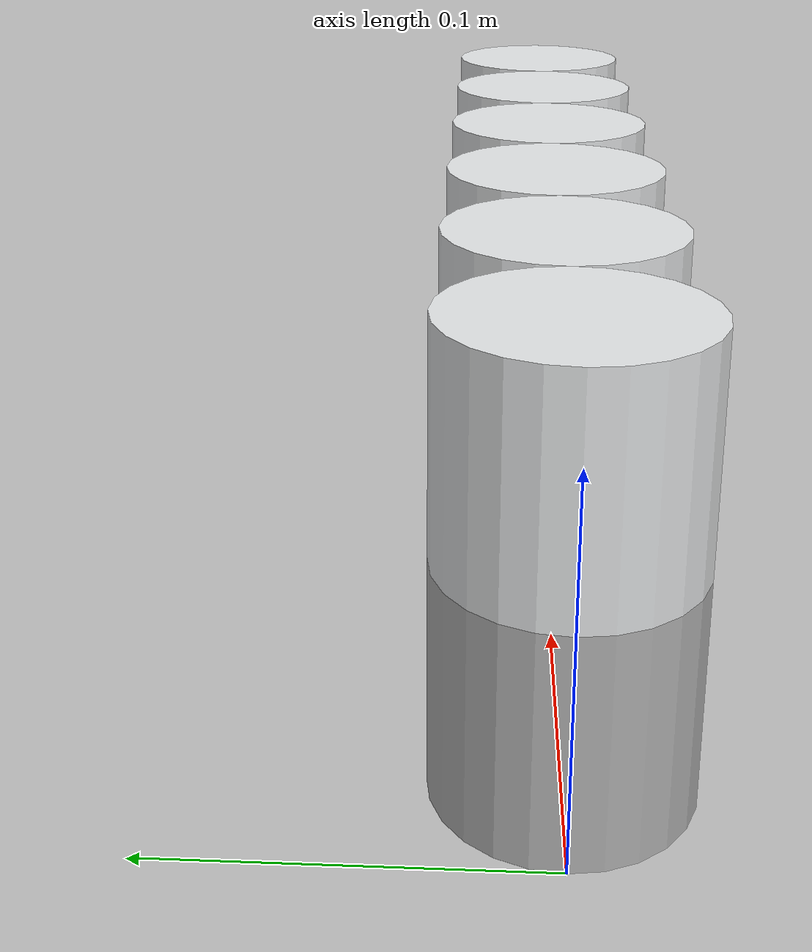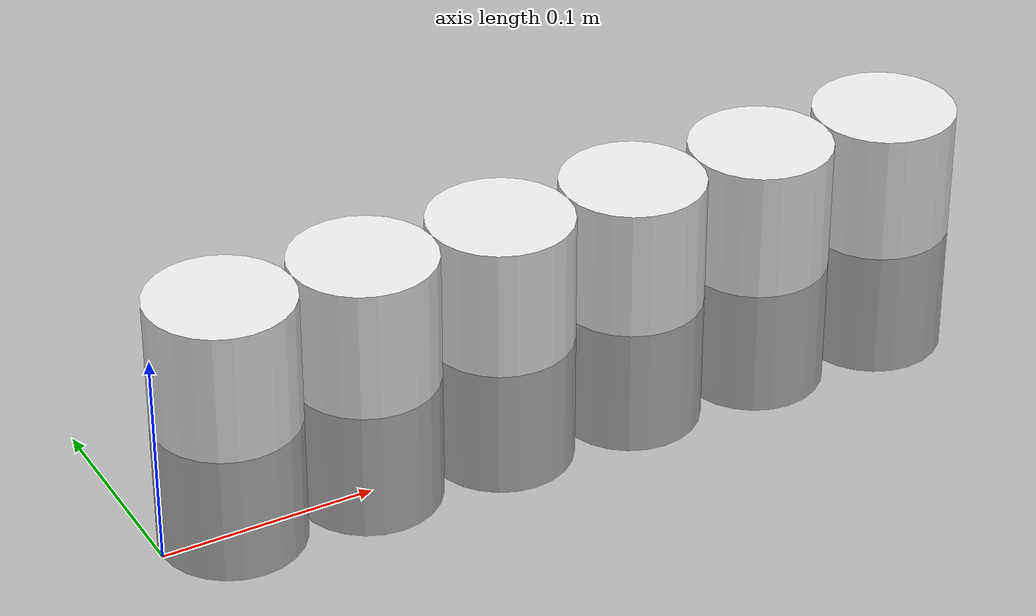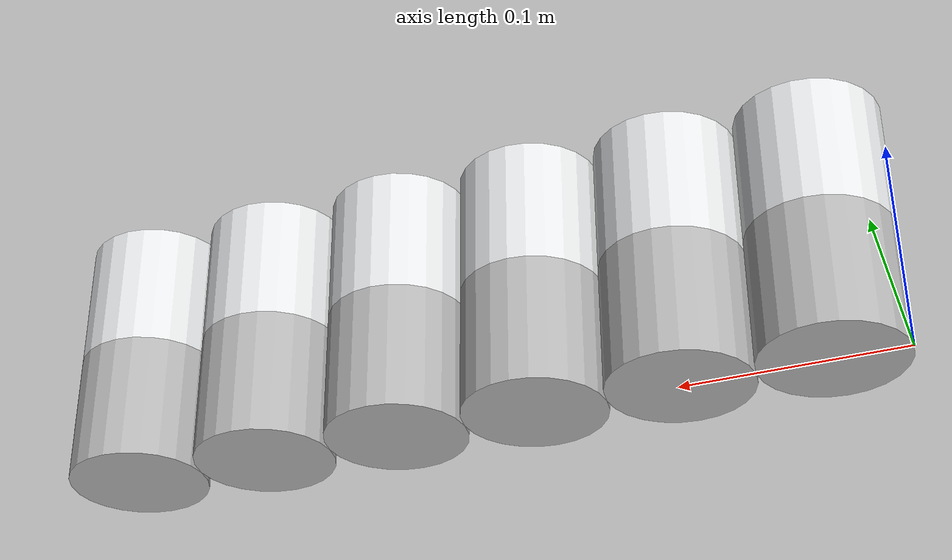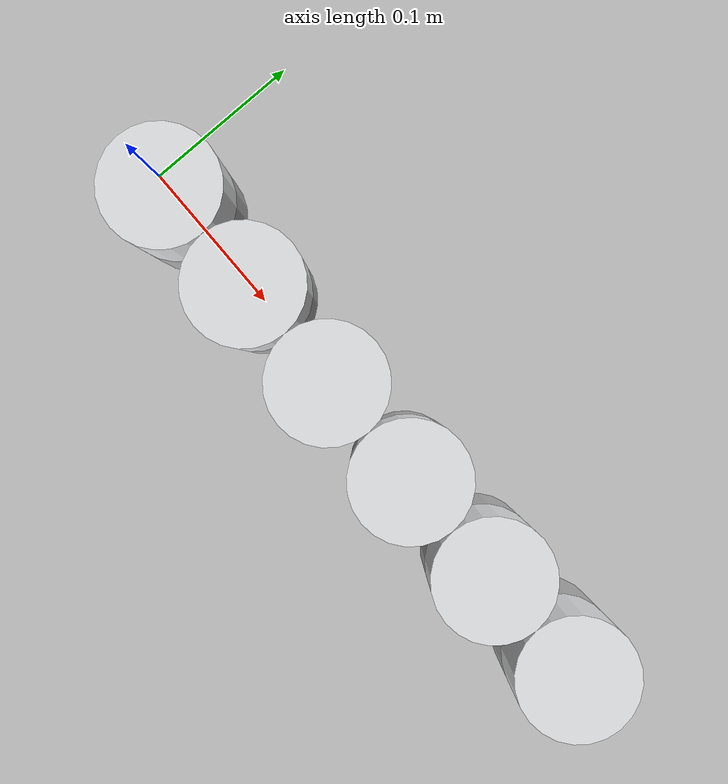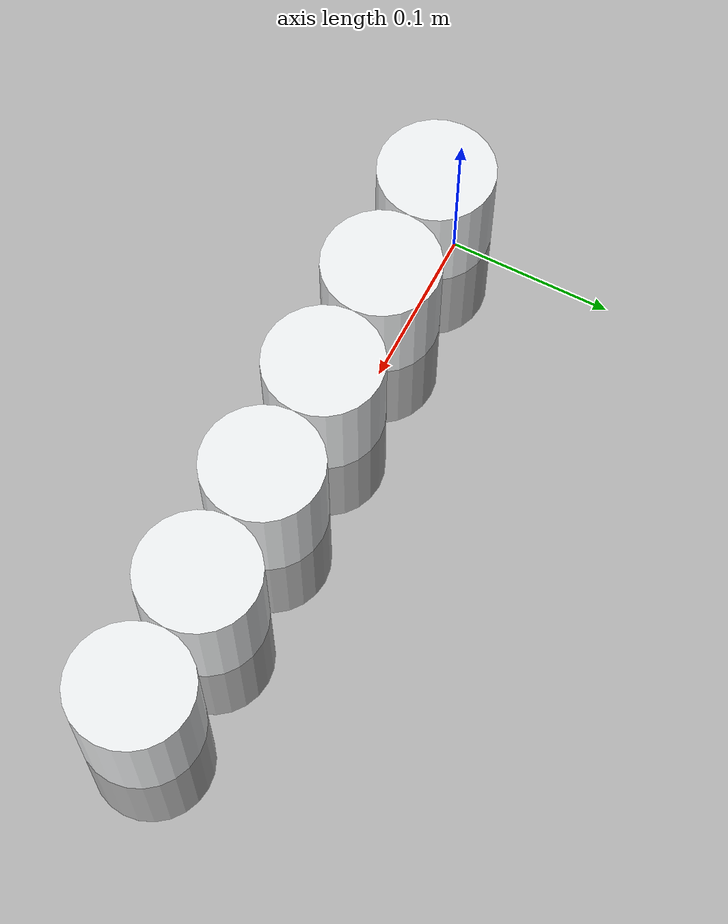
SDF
<?xml version='1.0'?>

<sdf version="1.5">
<model name="6cans">
  <pose>0 0 0 0 0 0</pose>

    <include>
      <name>1st_can</name>
      <uri>model://1can</uri>
      <pose>0.0 0 0 0 0 0</pose>
      <static>true</static>
    </include>

    <include>
      <name>2nd_can</name>
      <uri>model://1can</uri>
      <pose>0.066 0 0 0 0 0</pose>
      <static>true</static>
    </include>

    <include>
      <name>3rd_can</name>
      <uri>model://1can</uri>
      <pose>0.132 0 0 0 0 0</pose>
      <static>true</static>
    </include>

    <include>
      <name>4th_can</name>
      <uri>model://1can</uri>
      <pose>0.198 0 0 0 0 0</pose>
      <static>true</static>
    </include>

    <include>
      <name>5th_can</name>
      <uri>model://1can</uri>
      <pose>0.264 0 0 0 0 0</pose>
      <static>true</static>
    </include>

    <include>
      <name>6th_can</name>
      <uri>model://1can</uri>
      <pose>0.330 0 0 0 0 0</pose>
      <static>true</static>
    </include>

  </model>
</sdf>

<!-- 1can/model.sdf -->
<sdf version="1.5">
<model name="1can">
  <pose>0 0 0 0 0 0</pose>
     <link name="1st_can_upper">
        <pose>0.033 0 0.0915 0 0 0</pose>

        <collision name="collision">
          <geometry>
            <cylinder>
              <radius>0.033</radius>
              <length>0.061</length>
            </cylinder>
          </geometry>
        </collision>

        <visual name="visual">
          <geometry>
            <cylinder>
              <radius>0.033</radius>
              <length>0.061</length>
            </cylinder>
          </geometry>
          <material>
            <ambient>0.8 0.8 0.8 1</ambient>
            <diffuse>0.913 0.921 0.925 1</diffuse>
            <specular>1.0 1.0 1.0 0.8</specular>
            <emissive>0.0 0.0 0.0 1</emissive>
          </material>
        </visual>

      </link>

      <link name="1st_can_lower">
        <pose>0.033 0 0.0305 0 0 0</pose>

        <collision name="collision">
          <geometry>
            <cylinder>
              <radius>0.033</radius>
              <length>0.061</length>
            </cylinder>
          </geometry>
        </collision>

        <visual name="visual">
          <geometry>
            <cylinder>
              <radius>0.033</radius>
              <length>0.061</length>
            </cylinder>
          </geometry>
          <material>
            <script>
              <uri>model://1can/materials/scripts/tape.material</uri>
              <name>1can/Tape</name>
            </script>
          </material>
        </visual>

      </link>

  </model>
</sdf>
